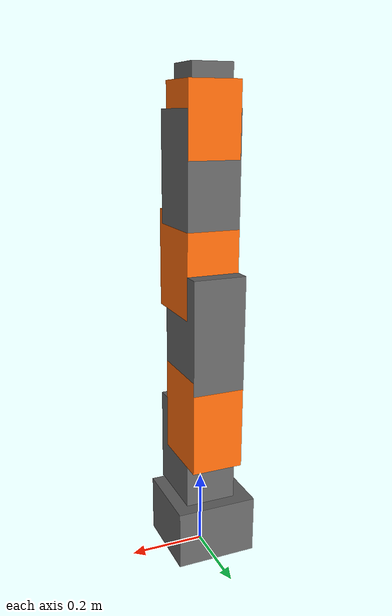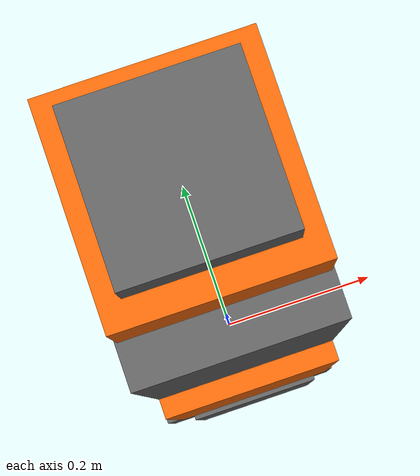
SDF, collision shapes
<?xml version="1.0"?>
<sdf version="1.7">
  <model name="iiwa7">
    <link name="iiwa_link_0">
      <inertial>
        <pose>-0.013 0 0.07 0 0 0</pose>
        <mass>3.863</mass>
        <inertia>
          <ixx>0.0141</ixx>
          <ixy>0</ixy>
          <ixz>0</ixz>
          <iyy>0.0171</iyy>
          <iyz>0</iyz>
          <izz>0.0178</izz>
        </inertia>
      </inertial>
      <visual name="iiwa_link_0_visual">
        <geometry>
          <mesh>
            <scale>1 1 1</scale>
            <uri>package://drake/manipulation/models/iiwa_description/iiwa7/link_0.obj</uri>
          </mesh>
        </geometry>
        <material>
          <diffuse>0.4 0.4 0.4 1.0</diffuse>
        </material>
      </visual>
      <collision name="iiwa_link_0_collision">
        <pose>-0.004563 0 0.07875 0 0 0</pose>
        <geometry>
          <box>
            <size>0.216874 0.207874 0.1575</size>
          </box>
        </geometry>
      </collision>
    </link>
    <link name="false_body">
      <inertial>
        <mass>1</mass>
        <inertia>
            <ixx>0.0041666666666666675</ixx> <ixy>0.0</ixy> <ixz>0.0</ixz> <iyy>0.0041666666666666675 </iyy> <iyz>0.0</iyz> <izz>0.001666666666666667</izz>
        </inertia>
      </inertial>
      <gravity>1</gravity>
    </link>
    <joint name="mobile_base_x" type="prismatic">
        <child>false_body</child>
        <parent>world</parent>
         <axis>
        <xyz expressed_in="__model__">1 0 0</xyz>
        <limit>
          <lower>-1</lower>
          <upper>3</upper>
          <effort>300</effort>
          <velocity>0.1</velocity>
        </limit>
        <dynamics>
          <damping>0.0</damping>
          <friction>0</friction>
          <spring_reference>0</spring_reference>
          <spring_stiffness>0</spring_stiffness>
        </dynamics>
      </axis>
    </joint>
    <link name="false_body2">
      <inertial>
        <mass>1</mass>
        <inertia>
            <ixx>0.0041666666666666675</ixx> <ixy>0.0</ixy> <ixz>0.0</ixz> <iyy>0.0041666666666666675 </iyy> <iyz>0.0</iyz> <izz>0.001666666666666667</izz>
        </inertia>
      </inertial>
      <gravity>1</gravity>
    </link>
    <joint name="mobile_base_y" type="prismatic">
        <child>false_body2</child>
        <parent>false_body</parent>
         <axis>
        <xyz expressed_in="__model__">0 1 0</xyz>
        <limit>
          <lower>-3</lower>
          <upper>3</upper>
          <effort>300</effort>
          <velocity>0.1</velocity>
        </limit>
        <dynamics>
          <damping>0.0</damping>
          <friction>0</friction>
          <spring_reference>0</spring_reference>
          <spring_stiffness>0</spring_stiffness>
        </dynamics>
      </axis>
    </joint>
    <joint name="mobile_base_z" type="revolute">
      <child>iiwa_link_0</child>
      <parent>false_body2</parent>
      <axis>
        <xyz expressed_in="__model__">0 0 1</xyz>
        <limit>
          <lower>-2.0944</lower>
          <upper>2.0944</upper>
          <effort>300</effort>
          <velocity>10</velocity>
        </limit>
        <dynamics>
          <damping>0.0</damping>
          <friction>0</friction>
          <spring_reference>0</spring_reference>
          <spring_stiffness>0</spring_stiffness>
        </dynamics>
      </axis>
    </joint>
    <link name="iiwa_link_1">
      <pose>0 0 0.1575 0 0 0</pose>
      <inertial>
        <pose>0 -0.0347 0.113 0 0 0</pose>
        <mass>2.7025</mass>
        <inertia>
          <ixx>0.0171</ixx>
          <ixy>0</ixy>
          <ixz>0</ixz>
          <iyy>0.0163</iyy>
          <iyz>0</iyz>
          <izz>0.006</izz>
        </inertia>
      </inertial>
      <visual name="iiwa_link_1_visual">
        <geometry>
          <mesh>
            <scale>1 1 1</scale>
            <uri>package://drake/manipulation/models/iiwa_description/iiwa7/link_1.obj</uri>
          </mesh>
        </geometry>
        <material>
          <diffuse>0.4 0.4 0.4 1.0</diffuse>
        </material>
      </visual>
      <collision name="iiwa_link_1_collision">
        <pose>0 -0.023301 0.127997 0 0 0</pose>
        <geometry>
          <box>
            <size>0.13596 0.182584 0.260995</size>
          </box>
        </geometry>
      </collision>
    </link>
    <joint name="iiwa_joint_1" type="revolute">
      <child>iiwa_link_1</child>
      <parent>iiwa_link_0</parent>
      <axis>
        <xyz expressed_in="__model__">0 0 1</xyz>
        <limit>
          <lower>-2.96706</lower>
          <upper>2.96706</upper>
          <effort>300</effort>
          <velocity>10</velocity>
        </limit>
        <dynamics>
          <damping>0.0</damping>
          <friction>0</friction>
          <spring_reference>0</spring_reference>
          <spring_stiffness>0</spring_stiffness>
        </dynamics>
      </axis>
    </joint>
    <link name="iiwa_link_2">
      <pose>0 0 0.3405 1.5708 0 -3.14159</pose>
      <inertial>
        <pose>0.000 0.0668 0.0344 0 0 0</pose>
        <mass>2.7258</mass>
        <inertia>
          <ixx>0.0170</ixx>
          <ixy>0</ixy>
          <ixz>0</ixz>
          <iyy>0.0162</iyy>
          <iyz>0</iyz>
          <izz>0.0061</izz>
        </inertia>
      </inertial>
      <visual name="iiwa_link_2_visual">
        <geometry>
          <mesh>
            <scale>1 1 1</scale>
            <uri>package://drake/manipulation/models/iiwa_description/iiwa7/link_2.obj</uri>
          </mesh>
        </geometry>
        <material>
          <diffuse>1.0 0.423529411765 0.0392156862745 1.0</diffuse>
        </material>
      </visual>
      <collision name="iiwa_link_2_collision">
        <pose>0 0.0580045 0.0173035 0 0 0</pose>
        <geometry>
          <box>
            <size>0.135988 0.251991 0.182605</size>
          </box>
        </geometry>
      </collision>
    </link>
    <joint name="iiwa_joint_2" type="revolute">
      <child>iiwa_link_2</child>
      <parent>iiwa_link_1</parent>
      <axis>
        <xyz expressed_in="__model__">-0 1 0</xyz>
        <limit>
          <lower>-2.0944</lower>
          <upper>2.0944</upper>
          <effort>300</effort>
          <velocity>10</velocity>
        </limit>
        <dynamics>
          <damping>0</damping>
          <friction>0</friction>
          <spring_reference>0</spring_reference>
          <spring_stiffness>0</spring_stiffness>
        </dynamics>
      </axis>
    </joint>
    <link name="iiwa_link_3">
      <pose>0 0 0.5245 0 0 0</pose>
      <inertial>
        <pose>0 0.0296 0.1265 0 0 0</pose>
        <mass>3.175</mass>
        <inertia>
          <ixx>0.025</ixx>
          <ixy>0</ixy>
          <ixz>0</ixz>
          <iyy>0.0238</iyy>
          <iyz>0</iyz>
          <izz>0.0076</izz>
        </inertia>
      </inertial>
      <visual name="iiwa_link_3_visual">
        <geometry>
          <mesh>
            <scale>1 1 1</scale>
            <uri>package://drake/manipulation/models/iiwa_description/iiwa7/link_3.obj</uri>
          </mesh>
        </geometry>
        <material>
          <diffuse>0.4 0.4 0.4 1.0</diffuse>
        </material>
      </visual>
      <collision name="iiwa_link_3_collision">
        <pose>0 0.0182965 0.11073 0 0 0</pose>
        <geometry>
          <box>
            <size>0.135987 0.182593 0.29346</size>
          </box>
        </geometry>
      </collision>
    </link>
    <joint name="iiwa_joint_3" type="revolute">
      <child>iiwa_link_3</child>
      <parent>iiwa_link_2</parent>
      <axis>
        <xyz expressed_in="__model__">0 0 1</xyz>
        <limit>
          <lower>-2.96706</lower>
          <upper>2.96706</upper>
          <effort>300</effort>
          <velocity>10</velocity>
        </limit>
        <dynamics>
          <damping>0</damping>
          <friction>0</friction>
          <spring_reference>0</spring_reference>
          <spring_stiffness>0</spring_stiffness>
        </dynamics>
      </axis>
    </joint>
    <link name="iiwa_link_4">
      <pose>0 0 0.74 1.5708 0 0</pose>
      <inertial>
        <pose>0 0.067 0.034 0 0 0</pose>
        <mass>2.73</mass>
        <inertia>
          <ixx>0.017</ixx>
          <ixy>0</ixy>
          <ixz>0</ixz>
          <iyy>0.0162</iyy>
          <iyz>0</iyz>
          <izz>0.0061</izz>
        </inertia>
      </inertial>
      <visual name="iiwa_link_4_visual">
        <geometry>
          <mesh>
            <scale>1 1 1</scale>
            <uri>package://drake/manipulation/models/iiwa_description/iiwa7/link_4.obj</uri>
          </mesh>
        </geometry>
        <material>
          <diffuse>1.0 0.423529411765 0.0392156862745 1.0</diffuse>
        </material>
      </visual>
      <collision name="iiwa_link_4_collision">
        <pose>0 0.0580045 0.0233035 0 0 0</pose>
        <geometry>
          <box>
            <size>0.135988 0.251991 0.182605</size>
          </box>
        </geometry>
      </collision>
    </link>
    <joint name="iiwa_joint_4" type="revolute">
      <child>iiwa_link_4</child>
      <parent>iiwa_link_3</parent>
      <axis>
        <xyz expressed_in="__model__">0 -1 0</xyz>
        <limit>
          <lower>-2.0944</lower>
          <upper>2.0944</upper>
          <effort>300</effort>
          <velocity>10</velocity>
        </limit>
        <dynamics>
          <damping>0</damping>
          <friction>0</friction>
          <spring_reference>0</spring_reference>
          <spring_stiffness>0</spring_stiffness>
        </dynamics>
      </axis>
    </joint>
    <link name="iiwa_link_5">
      <pose>0 0 0.924 0 0 -3.14159</pose>
      <inertial>
        <pose>0.0001 0.021 0.076 0 0 0</pose>
        <mass>1.69</mass>
        <inertia>
          <ixx>0.01</ixx>
          <ixy>0</ixy>
          <ixz>0</ixz>
          <iyy>0.0087</iyy>
          <iyz>0</iyz>
          <izz>0.00449</izz>
        </inertia>
      </inertial>
      <visual name="iiwa_link_5_visual">
        <geometry>
          <mesh>
            <scale>1 1 1</scale>
            <uri>package://drake/manipulation/models/iiwa_description/iiwa7/link_5.obj</uri>
          </mesh>
        </geometry>
        <material>
          <diffuse>0.4 0.4 0.4 1.0</diffuse>
        </material>
      </visual>
      <collision name="iiwa_link_5_collision">
        <pose>0 0.015546 0.102458 0 0 0</pose>
        <geometry>
          <box>
            <size>0.135999 0.167092 0.276916</size>
          </box>
        </geometry>
      </collision>
    </link>
    <joint name="iiwa_joint_5" type="revolute">
      <child>iiwa_link_5</child>
      <parent>iiwa_link_4</parent>
      <axis>
        <xyz expressed_in="__model__">0 0 1</xyz>
        <limit>
          <lower>-2.96706</lower>
          <upper>2.96706</upper>
          <effort>300</effort>
          <velocity>10</velocity>
        </limit>
        <dynamics>
          <damping>0</damping>
          <friction>0</friction>
          <spring_reference>0</spring_reference>
          <spring_stiffness>0</spring_stiffness>
        </dynamics>
      </axis>
    </joint>
    <link name="iiwa_link_6">
      <pose>0 0 1.1395 1.5708 0 -3.14159</pose>
      <inertial>
        <pose>0 0.0026 0.0005 0 0 0</pose>
        <mass>1.8</mass>
        <inertia>
          <ixx>0.0051</ixx>
          <ixy>0</ixy>
          <ixz>0</ixz>
          <iyy>0.0049</iyy>
          <iyz>0</iyz>
          <izz>0.0035</izz>
        </inertia>
      </inertial>
      <visual name="iiwa_link_6_visual">
        <pose>0 0 -0.060700 0 0 0</pose>
        <geometry>
          <mesh>
            <scale>1 1 1</scale>
            <uri>package://drake/manipulation/models/iiwa_description/iiwa7/link_6.obj</uri>
          </mesh>
        </geometry>
        <material>
          <diffuse>1.0 0.423529411765 0.0392156862745 1.0</diffuse>
        </material>
      </visual>
      <collision name="iiwa_link_6_collision">
        <geometry>
          <box>
            <size>0.132334 0.177387 0.137409</size>
          </box>
        </geometry>
      </collision>
    </link>
    <joint name="iiwa_joint_6" type="revolute">
      <child>iiwa_link_6</child>
      <parent>iiwa_link_5</parent>
      <axis>
        <xyz expressed_in="__model__">-0 1 -0</xyz>
        <limit>
          <lower>-2.0944</lower>
          <upper>2.0944</upper>
          <effort>300</effort>
          <velocity>10</velocity>
        </limit>
        <dynamics>
          <damping>0</damping>
          <friction>0</friction>
          <spring_reference>0</spring_reference>
          <spring_stiffness>0</spring_stiffness>
        </dynamics>
      </axis>
    </joint>
    <link name="iiwa_link_7">
      <pose>0 0 1.22 0 0 0</pose>
      <inertial>
        <pose>0 0 0.0294 0 0 0</pose>
        <mass>.4</mass>
        <inertia>
          <ixx>0.0004</ixx>
          <ixy>0</ixy>
          <ixz>0</ixz>
          <iyy>0.0004</iyy>
          <iyz>0</iyz>
          <izz>0.0005</izz>
        </inertia>
      </inertial>
      <visual name="iiwa_link_7_visual">
        <geometry>
          <mesh>
            <scale>1 1 1</scale>
            <uri>package://drake/manipulation/models/iiwa_description/iiwa7/link_7.obj</uri>
          </mesh>
        </geometry>
        <material>
          <diffuse>0.4 0.4 0.4 1.0</diffuse>
        </material>
      </visual>
      <collision name="iiwa_link_7_collision">
        <pose>0 0 0.021997 0 0 0</pose>
        <geometry>
          <box>
            <size>0.10385 0.103885 0.045</size>
          </box>
        </geometry>
      </collision>
    </link>
    <joint name="iiwa_joint_7" type="revolute">
      <child>iiwa_link_7</child>
      <parent>iiwa_link_6</parent>
      <axis>
        <xyz expressed_in="__model__">0 0 1</xyz>
        <limit>
          <lower>-3.05433</lower>
          <upper>3.05433</upper>
          <effort>300</effort>
          <velocity>10</velocity>
        </limit>
        <dynamics>
          <damping>0</damping>
          <friction>0</friction>
          <spring_reference>0</spring_reference>
          <spring_stiffness>0</spring_stiffness>
        </dynamics>
      </axis>
    </joint>
    <static>0</static>
  </model>
</sdf>
